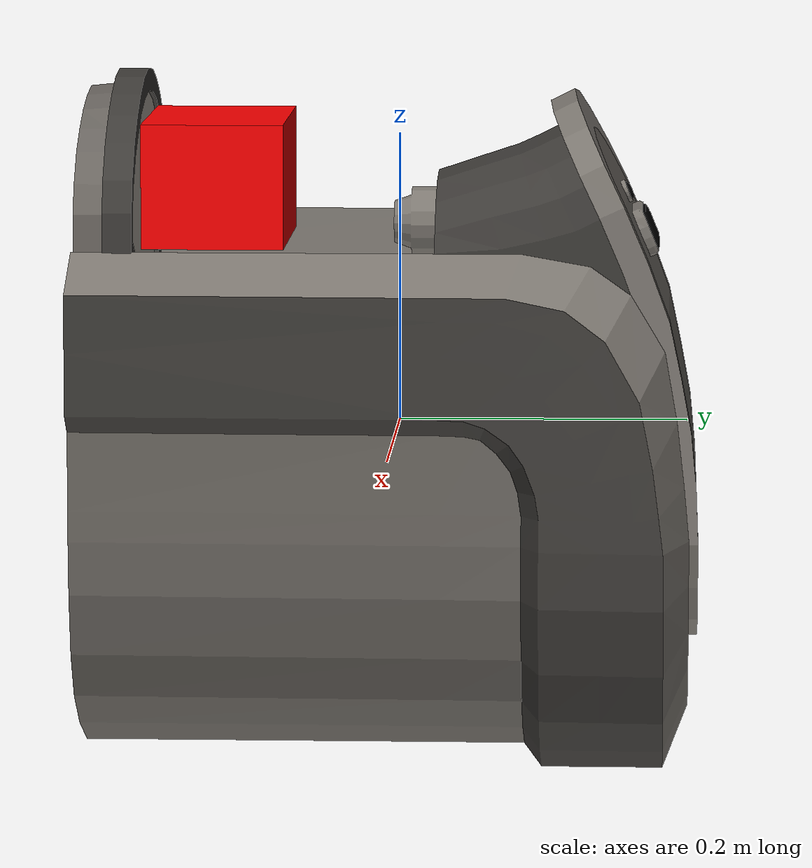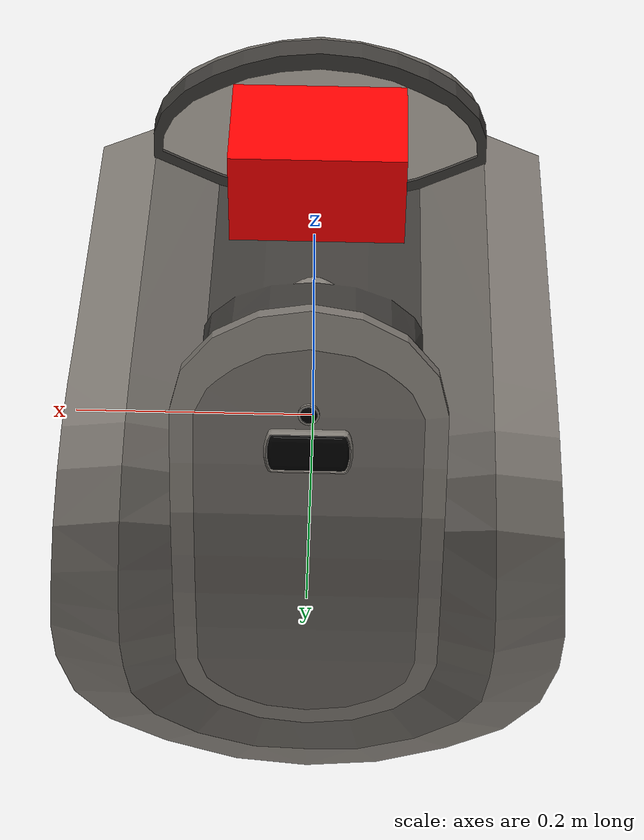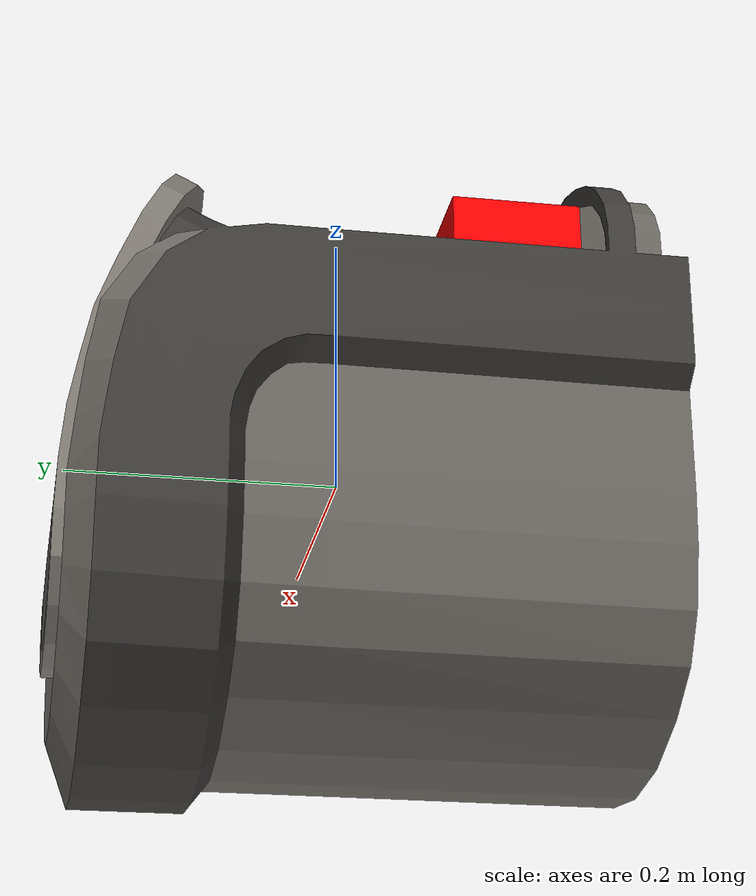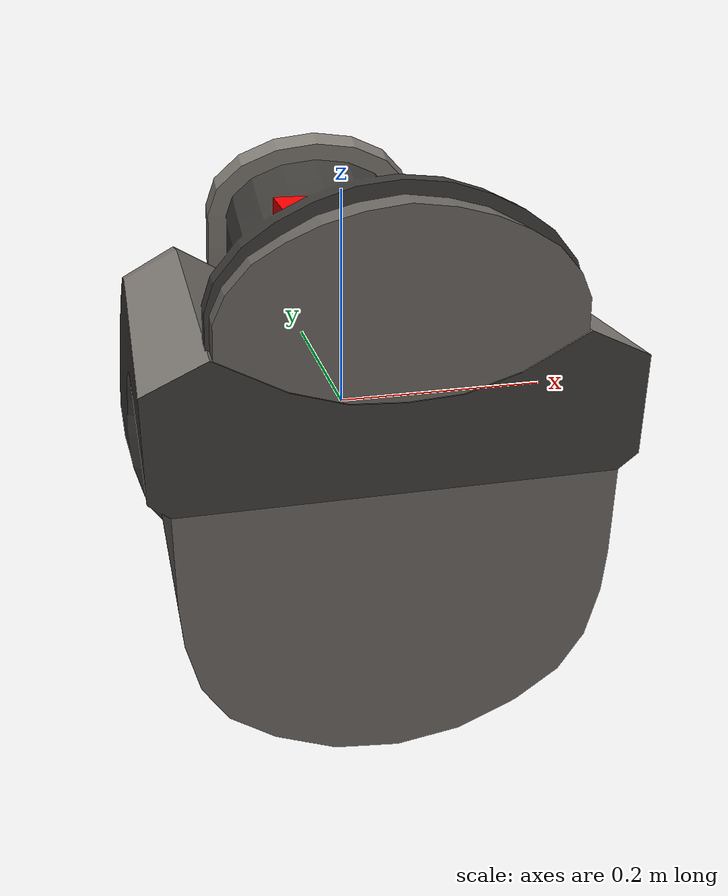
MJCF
<mujoco model="coffee_machine_10">
  <compiler autolimits="true" boundmass="0.01" angle="radian"/>
  <default>
    <default class="/">
      <default class="__VISUAL_MJT__">
        <geom contype="0" conaffinity="0" group="0"/>
      </default>
      <default class="__STRUCTURAL_MJT__">
        <geom contype="8" conaffinity="15" group="4" friction="0.90000000000000002 0.90000000000000002 0.001" solref="0.025000000000000001 1" solimp="0.998 0.998 0.001"/>
      </default>
      <default class="__DYNAMIC_MJT__">
        <geom contype="1" conaffinity="15" group="4" friction="0.90000000000000002 0.90000000000000002 0.001" solref="0.025000000000000001 1" solimp="0.998 0.998 0.001"/>
      </default>
    </default>
  </default>
  <asset>
    <material name="material_coffee_machine_backup_mat" class="/" specular="0.5" shininess="0.5" rgba="0.5 0.5 0.5 1"/>
    <material name="material_Coffee_Machine_Readout_Mat_Off" class="/" specular="0.5" shininess="0.5" rgba="0 0 0 1"/>
    <texture name="Coffee_Machine_Decal_Mat" type="2d" file="Coffee_Machine_Decal_AlbedoTransparency.png"/>
    <material name="material_Coffee_Machine_Decal_Mat" class="/" texture="Coffee_Machine_Decal_Mat" specular="0.5" shininess="0.5" rgba="1 1 1 1"/>
    <texture name="Coffee_Machine_Metal_Mat" type="2d" file="MetalBumpy_AlbedoTransparency.png"/>
    <material name="material_Coffee_Machine_Metal_Mat" class="/" texture="Coffee_Machine_Metal_Mat" specular="0.5" shininess="0.5" rgba="0.66176469999999998 0.66176469999999998 0.66176469999999998 1"/>
    <texture name="Coffee_Machine_Secondary5_Color_Mat" type="2d" file="BrushedIron_AlbedoTransparency.png"/>
    <material name="material_Coffee_Machine_Secondary5_Color_Mat" class="/" texture="Coffee_Machine_Secondary5_Color_Mat" specular="0.5" shininess="0.5" rgba="0.55147060000000003 0.55147060000000003 0.55147060000000003 1"/>
    <texture name="Coffee_Machine_Primary5_Color_Mat" type="2d" file="BrushedAluminum_AlbedoTransparency.png"/>
    <material name="material_Coffee_Machine_Primary5_Color_Mat" class="/" texture="Coffee_Machine_Primary5_Color_Mat" specular="0.5" shininess="0.5" rgba="0.32352940000000002 0.32352940000000002 0.32352940000000002 1"/>
    <mesh name="coffee_machine_10_coffee_machine_10_0" class="/" file="coffee_machine_10_coffee_machine_10/coffee_machine_10_coffee_machine_10_0.obj" scale="1 1 1"/>
    <mesh name="coffee_machine_10_coffee_machine_10_1" class="/" file="coffee_machine_10_coffee_machine_10/coffee_machine_10_coffee_machine_10_1.obj" scale="1 1 1"/>
    <mesh name="coffee_machine_10_coffee_machine_10_2" class="/" file="coffee_machine_10_coffee_machine_10/coffee_machine_10_coffee_machine_10_2.obj" scale="1 1 1"/>
    <mesh name="coffee_machine_10_coffee_machine_10_3" class="/" file="coffee_machine_10_coffee_machine_10/coffee_machine_10_coffee_machine_10_3.obj" scale="1 1 1"/>
    <mesh name="coffee_machine_10_coffee_machine_10_4" class="/" file="coffee_machine_10_coffee_machine_10/coffee_machine_10_coffee_machine_10_4.obj" scale="1 1 1"/>
    <mesh name="coffee_machine_10_coffee_machine_10_5" class="/" file="coffee_machine_10_coffee_machine_10/coffee_machine_10_coffee_machine_10_5.obj" scale="1 1 1"/>
  </asset>
  <worldbody>
    <body name="coffee_machine_10">
      <joint name="coffee_machine_10_free" class="/" type="free" pos="0 0 0" axis="0 0 1" stiffness="0" range="0 0" armature="0" damping="0.10000000000000001" frictionloss="0"/>
      <body name="coffee_machine_10_coffee_machine_10" pos="-0 -0.21654000000000001 0.0073400000000000002" quat="1 0 0 0">
        <geom name="coffee_machine_10_coffee_machine_10_0" class="__VISUAL_MJT__" type="mesh" material="material_coffee_machine_backup_mat" shellinertia="true" mesh="coffee_machine_10_coffee_machine_10_0"/>
        <geom name="coffee_machine_10_coffee_machine_10_1" class="__VISUAL_MJT__" type="mesh" material="material_Coffee_Machine_Readout_Mat_Off" shellinertia="false" mesh="coffee_machine_10_coffee_machine_10_1"/>
        <geom name="coffee_machine_10_coffee_machine_10_2" class="__VISUAL_MJT__" type="mesh" material="material_Coffee_Machine_Decal_Mat" shellinertia="true" mesh="coffee_machine_10_coffee_machine_10_2"/>
        <geom name="coffee_machine_10_coffee_machine_10_3" class="__VISUAL_MJT__" type="mesh" material="material_Coffee_Machine_Metal_Mat" shellinertia="false" mesh="coffee_machine_10_coffee_machine_10_3"/>
        <geom name="coffee_machine_10_coffee_machine_10_4" class="__VISUAL_MJT__" type="mesh" material="material_Coffee_Machine_Secondary5_Color_Mat" shellinertia="false" mesh="coffee_machine_10_coffee_machine_10_4"/>
        <geom name="coffee_machine_10_coffee_machine_10_5" class="__VISUAL_MJT__" type="mesh" material="material_Coffee_Machine_Primary5_Color_Mat" shellinertia="false" mesh="coffee_machine_10_coffee_machine_10_5"/>
        <site name="coffee_machine_10_Receptacle_0" class="/" type="box" rgba="1 0 0 1" size="0.072303161025047302 0.048751920461654663 0.042775582522153854" pos="-0 0.090651921927928925 0.16159999370574951" quat="1 0 0 0"/>
        <geom name="coffee_machine_10_PrimitiveCollider_0" class="__DYNAMIC_MJT__" type="box" size="0.20860692858695984 0.2165428102016449 0.19036740064620972" rgba="0 1 0 1" pos="-0 0.2165428102016449 -0.065950095653533936" quat="1 0 0 0"/>
        <geom name="coffee_machine_10_PrimitiveCollider_1" class="__DYNAMIC_MJT__" type="box" size="0.14155453443527222 0.021187394857406616 0.13176083564758301" rgba="0 1 0 1" pos="-0 0.021187394857406616 0.10986971855163574" quat="1 0 0 0"/>
        <geom name="coffee_machine_10_PrimitiveCollider_2" class="__DYNAMIC_MJT__" type="box" size="0.10511735826730728 0.079414591193199158 0.083428233861923218" rgba="0 1 0 1" pos="-0 0.30055755376815796 0.11615211516618729" quat="0.97950142621994019 0.20143741369247437 0 0"/>
      </body>
    </body>
  </worldbody>
</mujoco>
